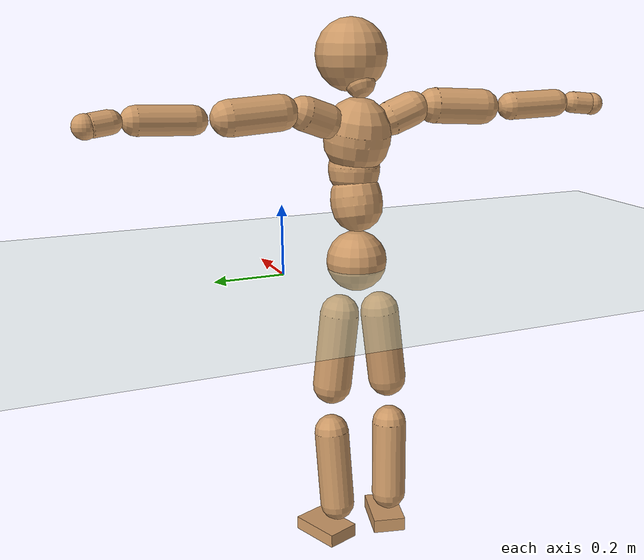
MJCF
<mujoco model="humanoid">
  <compiler coordinate="local" angle="radian"/>
  <default>
    <joint damping="0.0" armature="0.01" stiffness="0.0" limited="true"/>
    <geom conaffinity="1" condim="3" contype="7" margin="0.001" rgba="0.8 0.6 .4 1"/>
  </default>
  <asset>
    <texture type="skybox" builtin="gradient" rgb1=".4 .5 .6" rgb2="0 0 0" width="100" height="100"/>
    <texture builtin="flat" height="1278" mark="cross" markrgb="1 1 1" name="texgeom" random="0.01" rgb1="0.8 0.6 0.4" rgb2="0.8 0.6 0.4" type="cube" width="127"/>
    <texture builtin="checker" height="100" name="texplane" rgb1="0 0 0" rgb2="0.8 0.8 0.8" type="2d" width="100"/>
    <material name="MatPlane" reflectance="0.5" shininess="1" specular="1" texrepeat="60 60" texture="texplane"/>
    <material name="geom" texture="texgeom" texuniform="true"/>
  </asset>
  <worldbody>
    <light cutoff="100" diffuse="1 1 1" dir="-0 0 -1.3" directional="true" exponent="1" pos="0 0 1.3" specular=".1 .1 .1"/>
    <geom conaffinity="1" condim="3" name="floor" pos="0 0 0" rgba="0.8 0.9 0.8 1" size="100 100 .2" type="plane" material="MatPlane"/>
    <body name="Pelvis" pos="-0.0002 -0.2256 0.0176">
      <freejoint name="Pelvis"/>
      <geom type="sphere" contype="1" conaffinity="1" density="500" size="0.0882" pos="0.0000 0.0000 0.0000" name="Pelvis"/>
      <body name="L_Hip" pos="-0.0204 0.0549 -0.0772">
        <joint name="L_Hip_x" type="hinge" pos="0 0 0" axis="1 0 0" stiffness="800" damping="80" armature="0.02" range="-180.0000 180.0000"/>
        <joint name="L_Hip_y" type="hinge" pos="0 0 0" axis="0 1 0" stiffness="800" damping="80" armature="0.02" range="-180.0000 180.0000"/>
        <joint name="L_Hip_z" type="hinge" pos="0 0 0" axis="0 0 1" stiffness="800" damping="80" armature="0.02" range="-180.0000 180.0000"/>
        <geom type="capsule" contype="1" conaffinity="1" density="500" fromto="0.0010 0.0082 -0.0726 0.0040 0.0328 -0.2902" size="0.0573" name="L_Hip"/>
        <body name="L_Knee" pos="0.005 0.041 -0.3628">
          <joint name="L_Knee_x" type="hinge" pos="0 0 0" axis="1 0 0" stiffness="800" damping="80" armature="0.02" range="-180.0000 180.0000"/>
          <joint name="L_Knee_y" type="hinge" pos="0 0 0" axis="0 1 0" stiffness="800" damping="80" armature="0.02" range="-180.0000 180.0000"/>
          <joint name="L_Knee_z" type="hinge" pos="0 0 0" axis="0 0 1" stiffness="800" damping="80" armature="0.02" range="-180.0000 180.0000"/>
          <geom type="capsule" contype="1" conaffinity="1" density="500" fromto="-0.0069 -0.0025 -0.0767 -0.0278 -0.0100 -0.3068" size="0.0514" name="L_Knee"/>
          <body name="L_Ankle" pos="-0.0347 -0.0125 -0.3835">
            <joint name="L_Ankle_x" type="hinge" pos="0 0 0" axis="1 0 0" stiffness="800" damping="80" armature="0.02" range="-180.0000 180.0000"/>
            <joint name="L_Ankle_y" type="hinge" pos="0 0 0" axis="0 1 0" stiffness="800" damping="80" armature="0.02" range="-180.0000 180.0000"/>
            <joint name="L_Ankle_z" type="hinge" pos="0 0 0" axis="0 0 1" stiffness="800" damping="80" armature="0.02" range="-180.0000 180.0000"/>
            <geom type="box" contype="1" conaffinity="1" density="500" pos="0.0560 0.0207 -0.0276" size="0.08 0.0496 0.02" quat="0.9844 0.0000 0.0000 0.1758" name="L_Ankle"/>
            <body name="L_Toe" pos="0.112 0.0413 -0.0553">
              <joint name="L_Toe_x" type="hinge" pos="0 0 0" axis="1 0 0" stiffness="500" damping="50" armature="0.02" range="-180.0000 180.0000"/>
              <joint name="L_Toe_y" type="hinge" pos="0 0 0" axis="0 1 0" stiffness="500" damping="50" armature="0.02" range="-180.0000 180.0000"/>
              <joint name="L_Toe_z" type="hinge" pos="0 0 0" axis="0 0 1" stiffness="500" damping="50" armature="0.02" range="-180.0000 180.0000"/>
              <geom type="box" contype="1" conaffinity="1" density="500" pos="0.0000 0.0000 0.0278" size="0.001 0.0024 0.001" quat="0.9836 0.0000 0.0000 0.1805" name="L_Toe"/>
            </body>
          </body>
        </body>
      </body>
      <body name="R_Hip" pos="-0.0168 -0.0576 -0.0849">
        <joint name="R_Hip_x" type="hinge" pos="0 0 0" axis="1 0 0" stiffness="800" damping="80" armature="0.02" range="-180.0000 180.0000"/>
        <joint name="R_Hip_y" type="hinge" pos="0 0 0" axis="0 1 0" stiffness="800" damping="80" armature="0.02" range="-180.0000 180.0000"/>
        <joint name="R_Hip_z" type="hinge" pos="0 0 0" axis="0 0 1" stiffness="800" damping="80" armature="0.02" range="-180.0000 180.0000"/>
        <geom type="capsule" contype="1" conaffinity="1" density="500" fromto="-0.0012 -0.0082 -0.0716 -0.0047 -0.0327 -0.2862" size="0.0569" name="R_Hip"/>
        <body name="R_Knee" pos="-0.0058 -0.0409 -0.3578">
          <joint name="R_Knee_x" type="hinge" pos="0 0 0" axis="1 0 0" stiffness="800" damping="80" armature="0.02" range="-180.0000 180.0000"/>
          <joint name="R_Knee_y" type="hinge" pos="0 0 0" axis="0 1 0" stiffness="800" damping="80" armature="0.02" range="-180.0000 180.0000"/>
          <joint name="R_Knee_z" type="hinge" pos="0 0 0" axis="0 0 1" stiffness="800" damping="80" armature="0.02" range="-180.0000 180.0000"/>
          <geom type="capsule" contype="1" conaffinity="1" density="500" fromto="-0.0063 0.0033 -0.0754 -0.0254 0.0132 -0.3017" size="0.052" name="R_Knee"/>
          <body name="R_Ankle" pos="-0.0317 0.0165 -0.3771">
            <joint name="R_Ankle_x" type="hinge" pos="0 0 0" axis="1 0 0" stiffness="800" damping="80" armature="0.02" range="-180.0000 180.0000"/>
            <joint name="R_Ankle_y" type="hinge" pos="0 0 0" axis="0 1 0" stiffness="800" damping="80" armature="0.02" range="-180.0000 180.0000"/>
            <joint name="R_Ankle_z" type="hinge" pos="0 0 0" axis="0 0 1" stiffness="800" damping="80" armature="0.02" range="-180.0000 180.0000"/>
            <geom type="box" contype="1" conaffinity="1" density="500" pos="0.0598 -0.0148 -0.0293" size="0.0839 0.0489 0.0206" quat="0.9927 0.0000 0.0000 -0.1207" name="R_Ankle"/>
            <body name="R_Toe" pos="0.1196 -0.0295 -0.0586">
              <joint name="R_Toe_x" type="hinge" pos="0 0 0" axis="1 0 0" stiffness="500" damping="50" armature="0.02" range="-180.0000 180.0000"/>
              <joint name="R_Toe_y" type="hinge" pos="0 0 0" axis="0 1 0" stiffness="500" damping="50" armature="0.02" range="-180.0000 180.0000"/>
              <joint name="R_Toe_z" type="hinge" pos="0 0 0" axis="0 0 1" stiffness="500" damping="50" armature="0.02" range="-180.0000 180.0000"/>
              <geom type="box" contype="1" conaffinity="1" density="500" pos="0.0000 0.0000 0.0308" size="0.001 0.0024 0.0011" quat="0.9938 0.0000 0.0000 -0.1110" name="R_Toe"/>
            </body>
          </body>
        </body>
      </body>
      <body name="Torso" pos="-0.0291 0.0041 0.1141">
        <joint name="Torso_x" type="hinge" pos="0 0 0" axis="1 0 0" stiffness="1000" damping="100" armature="0.02" range="-180.0000 180.0000"/>
        <joint name="Torso_y" type="hinge" pos="0 0 0" axis="0 1 0" stiffness="1000" damping="100" armature="0.02" range="-180.0000 180.0000"/>
        <joint name="Torso_z" type="hinge" pos="0 0 0" axis="0 0 1" stiffness="1000" damping="100" armature="0.02" range="-180.0000 180.0000"/>
        <geom type="capsule" contype="1" conaffinity="1" density="500" fromto="0.0168 0.0024 0.0776 0.0112 0.0016 0.0517" size="0.0741" name="Torso"/>
        <body name="Spine" pos="0.028 0.0039 0.1294">
          <joint name="Spine_x" type="hinge" pos="0 0 0" axis="1 0 0" stiffness="1000" damping="100" armature="0.02" range="-180.0000 180.0000"/>
          <joint name="Spine_y" type="hinge" pos="0 0 0" axis="0 1 0" stiffness="1000" damping="100" armature="0.02" range="-180.0000 180.0000"/>
          <joint name="Spine_z" type="hinge" pos="0 0 0" axis="0 0 1" stiffness="1000" damping="100" armature="0.02" range="-180.0000 180.0000"/>
          <geom type="capsule" contype="1" conaffinity="1" density="500" fromto="0.0014 -0.0014 0.0311 0.0009 -0.0009 0.0207" size="0.0738" name="Spine"/>
          <body name="Chest" pos="0.0023 -0.0023 0.0518">
            <joint name="Chest_x" type="hinge" pos="0 0 0" axis="1 0 0" stiffness="1000" damping="100" armature="0.02" range="-180.0000 180.0000"/>
            <joint name="Chest_y" type="hinge" pos="0 0 0" axis="0 1 0" stiffness="1000" damping="100" armature="0.02" range="-180.0000 180.0000"/>
            <joint name="Chest_z" type="hinge" pos="0 0 0" axis="0 0 1" stiffness="1000" damping="100" armature="0.02" range="-180.0000 180.0000"/>
            <geom type="capsule" contype="1" conaffinity="1" density="500" fromto="-0.0132 -0.0054 0.0806 -0.0088 -0.0036 0.0537" size="0.0948" name="Chest"/>
            <body name="Neck" pos="-0.0262 -0.0135 0.1953">
              <joint name="Neck_x" type="hinge" pos="0 0 0" axis="1 0 0" stiffness="500" damping="50" armature="0.02" range="-180.0000 180.0000"/>
              <joint name="Neck_y" type="hinge" pos="0 0 0" axis="0 1 0" stiffness="500" damping="50" armature="0.02" range="-180.0000 180.0000"/>
              <joint name="Neck_z" type="hinge" pos="0 0 0" axis="0 0 1" stiffness="500" damping="50" armature="0.02" range="-180.0000 180.0000"/>
              <geom type="capsule" contype="1" conaffinity="1" density="500" fromto="0.0105 0.0019 0.0184 0.0418 0.0076 0.0735" size="0.0431" name="Neck"/>
              <body name="Head" pos="0.0523 0.0094 0.0919">
                <joint name="Head_x" type="hinge" pos="0 0 0" axis="1 0 0" stiffness="500" damping="50" armature="0.02" range="-180.0000 180.0000"/>
                <joint name="Head_y" type="hinge" pos="0 0 0" axis="0 1 0" stiffness="500" damping="50" armature="0.02" range="-180.0000 180.0000"/>
                <joint name="Head_z" type="hinge" pos="0 0 0" axis="0 0 1" stiffness="500" damping="50" armature="0.02" range="-180.0000 180.0000"/>
                <geom type="sphere" contype="1" conaffinity="1" density="500" size="0.1019" pos="0.0000 0.0000 0.0000" name="Head"/>
              </body>
            </body>
            <body name="L_Thorax" pos="-0.0183 0.0668 0.1037">
              <joint name="L_Thorax_x" type="hinge" pos="0 0 0" axis="1 0 0" stiffness="500" damping="50" armature="0.02" range="-180.0000 180.0000"/>
              <joint name="L_Thorax_y" type="hinge" pos="0 0 0" axis="0 1 0" stiffness="500" damping="50" armature="0.02" range="-180.0000 180.0000"/>
              <joint name="L_Thorax_z" type="hinge" pos="0 0 0" axis="0 0 1" stiffness="500" damping="50" armature="0.02" range="-180.0000 180.0000"/>
              <geom type="capsule" contype="1" conaffinity="1" density="500" fromto="-0.0036 0.0232 0.0084 -0.0144 0.0927 0.0336" size="0.048" name="L_Thorax"/>
              <body name="L_Shoulder" pos="-0.018 0.1158 0.0419">
                <joint name="L_Shoulder_x" type="hinge" pos="0 0 0" axis="1 0 0" stiffness="500" damping="50" armature="0.02" range="-720.0000 720.0000"/>
                <joint name="L_Shoulder_y" type="hinge" pos="0 0 0" axis="0 1 0" stiffness="500" damping="50" armature="0.02" range="-720.0000 720.0000"/>
                <joint name="L_Shoulder_z" type="hinge" pos="0 0 0" axis="0 0 1" stiffness="500" damping="50" armature="0.02" range="-720.0000 720.0000"/>
                <geom type="capsule" contype="1" conaffinity="1" density="500" fromto="-0.0032 0.0478 -0.0027 -0.0130 0.1910 -0.0107" size="0.0494" name="L_Shoulder"/>
                <body name="L_Elbow" pos="-0.0162 0.2388 -0.0133">
                  <joint name="L_Elbow_x" type="hinge" pos="0 0 0" axis="1 0 0" stiffness="500" damping="50" armature="0.02" range="-720.0000 720.0000"/>
                  <joint name="L_Elbow_y" type="hinge" pos="0 0 0" axis="0 1 0" stiffness="500" damping="50" armature="0.02" range="-720.0000 720.0000"/>
                  <joint name="L_Elbow_z" type="hinge" pos="0 0 0" axis="0 0 1" stiffness="500" damping="50" armature="0.02" range="-720.0000 720.0000"/>
                  <geom type="capsule" contype="1" conaffinity="1" density="500" fromto="-0.0019 0.0479 0.0019 -0.0077 0.1917 0.0075" size="0.0389" name="L_Elbow"/>
                  <body name="L_Wrist" pos="-0.0096 0.2396 0.0094">
                    <joint name="L_Wrist_x" type="hinge" pos="0 0 0" axis="1 0 0" stiffness="300" damping="30" armature="0.02" range="-180.0000 180.0000"/>
                    <joint name="L_Wrist_y" type="hinge" pos="0 0 0" axis="0 1 0" stiffness="300" damping="30" armature="0.02" range="-180.0000 180.0000"/>
                    <joint name="L_Wrist_z" type="hinge" pos="0 0 0" axis="0 0 1" stiffness="300" damping="30" armature="0.02" range="-180.0000 180.0000"/>
                    <geom type="capsule" contype="1" conaffinity="1" density="500" fromto="-0.0028 0.0156 -0.0019 -0.0111 0.0623 -0.0077" size="0.0309" name="L_Wrist"/>
                    <body name="L_Hand" pos="-0.0139 0.0778 -0.0096">
                      <joint name="L_Hand_x" type="hinge" pos="0 0 0" axis="1 0 0" stiffness="300" damping="30" armature="0.02" range="-180.0000 180.0000"/>
                      <joint name="L_Hand_y" type="hinge" pos="0 0 0" axis="0 1 0" stiffness="300" damping="30" armature="0.02" range="-180.0000 180.0000"/>
                      <joint name="L_Hand_z" type="hinge" pos="0 0 0" axis="0 0 1" stiffness="300" damping="30" armature="0.02" range="-180.0000 180.0000"/>
                      <geom type="sphere" contype="1" conaffinity="1" density="500" size="0.0321" pos="0.0000 0.0000 0.0000" name="L_Hand"/>
                    </body>
                  </body>
                </body>
              </body>
            </body>
            <body name="R_Thorax" pos="-0.0216 -0.0802 0.104">
              <joint name="R_Thorax_x" type="hinge" pos="0 0 0" axis="1 0 0" stiffness="500" damping="50" armature="0.02" range="-180.0000 180.0000"/>
              <joint name="R_Thorax_y" type="hinge" pos="0 0 0" axis="0 1 0" stiffness="500" damping="50" armature="0.02" range="-180.0000 180.0000"/>
              <joint name="R_Thorax_z" type="hinge" pos="0 0 0" axis="0 0 1" stiffness="500" damping="50" armature="0.02" range="-180.0000 180.0000"/>
              <geom type="capsule" contype="1" conaffinity="1" density="500" fromto="-0.0015 -0.0215 0.0087 -0.0061 -0.0860 0.0347" size="0.0486" name="R_Thorax"/>
              <body name="R_Shoulder" pos="-0.0076 -0.1075 0.0433">
                <joint name="R_Shoulder_x" type="hinge" pos="0 0 0" axis="1 0 0" stiffness="500" damping="50" armature="0.02" range="-720.0000 720.0000"/>
                <joint name="R_Shoulder_y" type="hinge" pos="0 0 0" axis="0 1 0" stiffness="500" damping="50" armature="0.02" range="-720.0000 720.0000"/>
                <joint name="R_Shoulder_z" type="hinge" pos="0 0 0" axis="0 0 1" stiffness="500" damping="50" armature="0.02" range="-720.0000 720.0000"/>
                <geom type="capsule" contype="1" conaffinity="1" density="500" fromto="-0.0049 -0.0483 -0.0025 -0.0195 -0.1933 -0.0100" size="0.0508" name="R_Shoulder"/>
                <body name="R_Elbow" pos="-0.0244 -0.2417 -0.0125">
                  <joint name="R_Elbow_x" type="hinge" pos="0 0 0" axis="1 0 0" stiffness="500" damping="50" armature="0.02" range="-720.0000 720.0000"/>
                  <joint name="R_Elbow_y" type="hinge" pos="0 0 0" axis="0 1 0" stiffness="500" damping="50" armature="0.02" range="-720.0000 720.0000"/>
                  <joint name="R_Elbow_z" type="hinge" pos="0 0 0" axis="0 0 1" stiffness="500" damping="50" armature="0.02" range="-720.0000 720.0000"/>
                  <geom type="capsule" contype="1" conaffinity="1" density="500" fromto="-0.0013 -0.0494 0.0015 -0.0053 -0.1977 0.0058" size="0.0403" name="R_Elbow"/>
                  <body name="R_Wrist" pos="-0.0067 -0.2471 0.0073">
                    <joint name="R_Wrist_x" type="hinge" pos="0 0 0" axis="1 0 0" stiffness="300" damping="30" armature="0.02" range="-180.0000 180.0000"/>
                    <joint name="R_Wrist_y" type="hinge" pos="0 0 0" axis="0 1 0" stiffness="300" damping="30" armature="0.02" range="-180.0000 180.0000"/>
                    <joint name="R_Wrist_z" type="hinge" pos="0 0 0" axis="0 0 1" stiffness="300" damping="30" armature="0.02" range="-180.0000 180.0000"/>
                    <geom type="capsule" contype="1" conaffinity="1" density="500" fromto="-0.0018 -0.0162 -0.0016 -0.0073 -0.0648 -0.0063" size="0.0321" name="R_Wrist"/>
                    <body name="R_Hand" pos="-0.0092 -0.081 -0.0078">
                      <joint name="R_Hand_x" type="hinge" pos="0 0 0" axis="1 0 0" stiffness="300" damping="30" armature="0.02" range="-180.0000 180.0000"/>
                      <joint name="R_Hand_y" type="hinge" pos="0 0 0" axis="0 1 0" stiffness="300" damping="30" armature="0.02" range="-180.0000 180.0000"/>
                      <joint name="R_Hand_z" type="hinge" pos="0 0 0" axis="0 0 1" stiffness="300" damping="30" armature="0.02" range="-180.0000 180.0000"/>
                      <geom type="sphere" contype="1" conaffinity="1" density="500" size="0.0331" pos="0.0000 0.0000 0.0000" name="R_Hand"/>
                    </body>
                  </body>
                </body>
              </body>
            </body>
          </body>
        </body>
      </body>
    </body>
  </worldbody>
  <actuator>
    <motor name="L_Hip_x" joint="L_Hip_x" gear="500"/>
    <motor name="L_Hip_y" joint="L_Hip_y" gear="500"/>
    <motor name="L_Hip_z" joint="L_Hip_z" gear="500"/>
    <motor name="L_Knee_x" joint="L_Knee_x" gear="500"/>
    <motor name="L_Knee_y" joint="L_Knee_y" gear="500"/>
    <motor name="L_Knee_z" joint="L_Knee_z" gear="500"/>
    <motor name="L_Ankle_x" joint="L_Ankle_x" gear="500"/>
    <motor name="L_Ankle_y" joint="L_Ankle_y" gear="500"/>
    <motor name="L_Ankle_z" joint="L_Ankle_z" gear="500"/>
    <motor name="L_Toe_x" joint="L_Toe_x" gear="500"/>
    <motor name="L_Toe_y" joint="L_Toe_y" gear="500"/>
    <motor name="L_Toe_z" joint="L_Toe_z" gear="500"/>
    <motor name="R_Hip_x" joint="R_Hip_x" gear="500"/>
    <motor name="R_Hip_y" joint="R_Hip_y" gear="500"/>
    <motor name="R_Hip_z" joint="R_Hip_z" gear="500"/>
    <motor name="R_Knee_x" joint="R_Knee_x" gear="500"/>
    <motor name="R_Knee_y" joint="R_Knee_y" gear="500"/>
    <motor name="R_Knee_z" joint="R_Knee_z" gear="500"/>
    <motor name="R_Ankle_x" joint="R_Ankle_x" gear="500"/>
    <motor name="R_Ankle_y" joint="R_Ankle_y" gear="500"/>
    <motor name="R_Ankle_z" joint="R_Ankle_z" gear="500"/>
    <motor name="R_Toe_x" joint="R_Toe_x" gear="500"/>
    <motor name="R_Toe_y" joint="R_Toe_y" gear="500"/>
    <motor name="R_Toe_z" joint="R_Toe_z" gear="500"/>
    <motor name="Torso_x" joint="Torso_x" gear="500"/>
    <motor name="Torso_y" joint="Torso_y" gear="500"/>
    <motor name="Torso_z" joint="Torso_z" gear="500"/>
    <motor name="Spine_x" joint="Spine_x" gear="500"/>
    <motor name="Spine_y" joint="Spine_y" gear="500"/>
    <motor name="Spine_z" joint="Spine_z" gear="500"/>
    <motor name="Chest_x" joint="Chest_x" gear="500"/>
    <motor name="Chest_y" joint="Chest_y" gear="500"/>
    <motor name="Chest_z" joint="Chest_z" gear="500"/>
    <motor name="Neck_x" joint="Neck_x" gear="500"/>
    <motor name="Neck_y" joint="Neck_y" gear="500"/>
    <motor name="Neck_z" joint="Neck_z" gear="500"/>
    <motor name="Head_x" joint="Head_x" gear="500"/>
    <motor name="Head_y" joint="Head_y" gear="500"/>
    <motor name="Head_z" joint="Head_z" gear="500"/>
    <motor name="L_Thorax_x" joint="L_Thorax_x" gear="500"/>
    <motor name="L_Thorax_y" joint="L_Thorax_y" gear="500"/>
    <motor name="L_Thorax_z" joint="L_Thorax_z" gear="500"/>
    <motor name="L_Shoulder_x" joint="L_Shoulder_x" gear="500"/>
    <motor name="L_Shoulder_y" joint="L_Shoulder_y" gear="500"/>
    <motor name="L_Shoulder_z" joint="L_Shoulder_z" gear="500"/>
    <motor name="L_Elbow_x" joint="L_Elbow_x" gear="500"/>
    <motor name="L_Elbow_y" joint="L_Elbow_y" gear="500"/>
    <motor name="L_Elbow_z" joint="L_Elbow_z" gear="500"/>
    <motor name="L_Wrist_x" joint="L_Wrist_x" gear="500"/>
    <motor name="L_Wrist_y" joint="L_Wrist_y" gear="500"/>
    <motor name="L_Wrist_z" joint="L_Wrist_z" gear="500"/>
    <motor name="L_Hand_x" joint="L_Hand_x" gear="500"/>
    <motor name="L_Hand_y" joint="L_Hand_y" gear="500"/>
    <motor name="L_Hand_z" joint="L_Hand_z" gear="500"/>
    <motor name="R_Thorax_x" joint="R_Thorax_x" gear="500"/>
    <motor name="R_Thorax_y" joint="R_Thorax_y" gear="500"/>
    <motor name="R_Thorax_z" joint="R_Thorax_z" gear="500"/>
    <motor name="R_Shoulder_x" joint="R_Shoulder_x" gear="500"/>
    <motor name="R_Shoulder_y" joint="R_Shoulder_y" gear="500"/>
    <motor name="R_Shoulder_z" joint="R_Shoulder_z" gear="500"/>
    <motor name="R_Elbow_x" joint="R_Elbow_x" gear="500"/>
    <motor name="R_Elbow_y" joint="R_Elbow_y" gear="500"/>
    <motor name="R_Elbow_z" joint="R_Elbow_z" gear="500"/>
    <motor name="R_Wrist_x" joint="R_Wrist_x" gear="500"/>
    <motor name="R_Wrist_y" joint="R_Wrist_y" gear="500"/>
    <motor name="R_Wrist_z" joint="R_Wrist_z" gear="500"/>
    <motor name="R_Hand_x" joint="R_Hand_x" gear="500"/>
    <motor name="R_Hand_y" joint="R_Hand_y" gear="500"/>
    <motor name="R_Hand_z" joint="R_Hand_z" gear="500"/>
  </actuator>
  <contact>
    <exclude body1="Torso" body2="Chest"/>
    <exclude body1="Head" body2="Chest"/>
    <exclude body1="R_Knee" body2="R_Toe"/>
    <exclude body1="R_Knee" body2="L_Ankle"/>
    <exclude body1="R_Knee" body2="L_Toe"/>
    <exclude body1="L_Knee" body2="L_Toe"/>
    <exclude body1="L_Knee" body2="R_Ankle"/>
    <exclude body1="L_Knee" body2="R_Toe"/>
    <exclude body1="L_Shoulder" body2="Chest"/>
    <exclude body1="R_Shoulder" body2="Chest"/>
  </contact>
  <sensor/>
  <size njmax="700" nconmax="700"/>
</mujoco>
